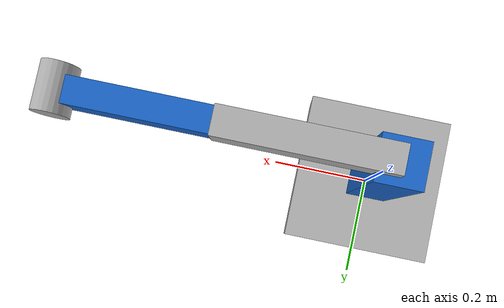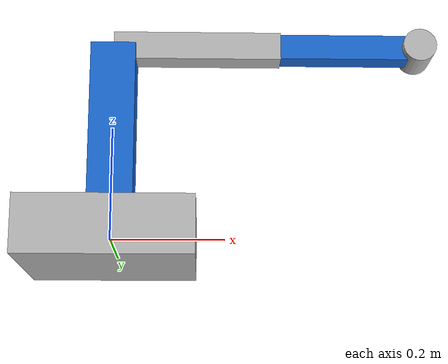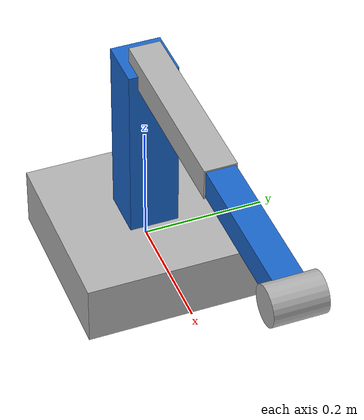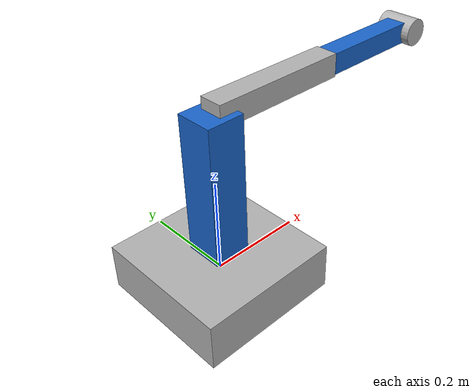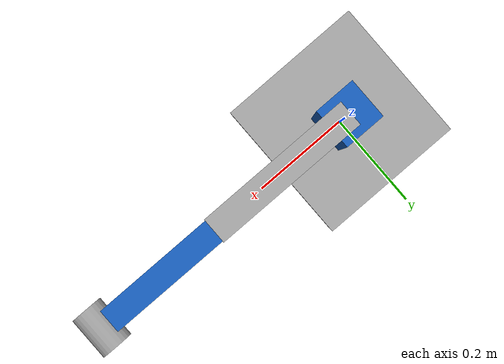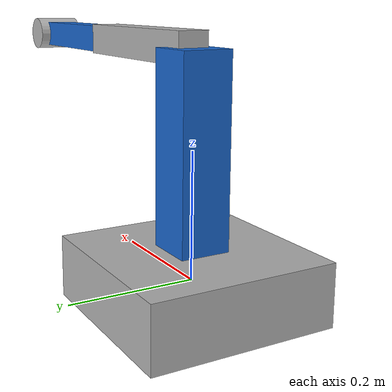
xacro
<?xml version="1.0"?>
<robot xmlns:xacro="http://www.ros.org/wiki/xacro" name="robotic_arm">
  <!-- Note: xacro already provides mathematical constants like pi; avoid redefining to prevent stderr warnings. -->

  <!-- Colors -->
  <material name="gray"><color rgba="0.7 0.7 0.7 1.0"/></material>
  <material name="blue"><color rgba="0.1 0.4 0.8 1.0"/></material>

  <!-- Base -->
  <link name="base_link">
    <inertial>
      <mass value="2.0"/>
      <inertia ixx="0.02" ixy="0" ixz="0" iyy="0.02" iyz="0" izz="0.02"/>
    </inertial>
    <visual>
      <geometry><box size="0.3 0.3 0.1"/></geometry>
      <origin xyz="0 0 0" rpy="0 0 0"/>
      <material name="gray"/>
    </visual>
    <collision>
      <geometry><box size="0.3 0.3 0.1"/></geometry>
      <origin xyz="0 0 0" rpy="0 0 0"/>
    </collision>
  </link>

  <!-- Shoulder tower -->
  <link name="shoulder_link">
    <inertial>
      <mass value="1.0"/>
      <inertia ixx="0.01" ixy="0" ixz="0" iyy="0.01" iyz="0" izz="0.01"/>
    </inertial>
    <visual>
      <geometry><box size="0.08 0.08 0.30"/></geometry>
      <origin xyz="0 0 0.15" rpy="0 0 0"/>
      <material name="blue"/>
    </visual>
    <collision>
      <geometry><box size="0.08 0.08 0.30"/></geometry>
      <origin xyz="0 0 0.15" rpy="0 0 0"/>
    </collision>
  </link>

  <!-- Upper arm -->
  <link name="upper_arm_link">
    <inertial>
      <mass value="0.8"/>
      <inertia ixx="0.008" ixy="0" ixz="0" iyy="0.008" iyz="0" izz="0.008"/>
    </inertial>
    <visual>
      <geometry><box size="0.30 0.05 0.05"/></geometry>
      <origin xyz="0.15 0 0" rpy="0 0 0"/>
      <material name="gray"/>
    </visual>
    <collision>
      <geometry><box size="0.30 0.05 0.05"/></geometry>
      <origin xyz="0.15 0 0" rpy="0 0 0"/>
    </collision>
  </link>

  <!-- Forearm -->
  <link name="forearm_link">
    <inertial>
      <mass value="0.6"/>
      <inertia ixx="0.006" ixy="0" ixz="0" iyy="0.006" iyz="0" izz="0.006"/>
    </inertial>
    <visual>
      <geometry><box size="0.25 0.045 0.045"/></geometry>
      <origin xyz="0.125 0 0" rpy="0 0 0"/>
      <material name="blue"/>
    </visual>
    <collision>
      <geometry><box size="0.25 0.045 0.045"/></geometry>
      <origin xyz="0.125 0 0" rpy="0 0 0"/>
    </collision>
  </link>

  <!-- Wrist -->
  <link name="wrist_link">
    <inertial>
      <mass value="0.3"/>
      <inertia ixx="0.003" ixy="0" ixz="0" iyy="0.003" iyz="0" izz="0.003"/>
    </inertial>
    <visual>
      <geometry><cylinder radius="0.03" length="0.08"/></geometry>
      <origin xyz="0 0 0" rpy="1.5708 0 0"/>
      <material name="gray"/>
    </visual>
    <collision>
      <geometry><cylinder radius="0.03" length="0.08"/></geometry>
      <origin xyz="0 0 0" rpy="1.5708 0 0"/>
    </collision>
  </link>

  <!-- Joints -->

  <!-- Pan at top of base -->
  <joint name="shoulder_pan_joint" type="revolute">
    <parent link="base_link"/>
    <child link="shoulder_link"/>
    <origin xyz="0 0 0.05" rpy="0 0 0"/>
    <axis xyz="0 0 1"/>
    <limit lower="-3.14" upper="3.14" effort="20.0" velocity="1.5"/>
    <dynamics damping="0.2" friction="0.0"/>
  </joint>

  <!-- Shoulder pitch at top of tower -->
  <joint name="shoulder_pitch_joint" type="revolute">
    <parent link="shoulder_link"/>
    <child link="upper_arm_link"/>
    <origin xyz="0 0 0.30" rpy="0 0 0"/>
    <axis xyz="0 1 0"/>
    <limit lower="-1.57" upper="1.57" effort="15.0" velocity="1.5"/>
    <dynamics damping="0.1" friction="0.0"/>
  </joint>

  <!-- Elbow pitch at end of upper arm -->
  <joint name="elbow_joint" type="revolute">
    <parent link="upper_arm_link"/>
    <child link="forearm_link"/>
    <origin xyz="0.30 0 0" rpy="0 0 0"/>
    <axis xyz="0 1 0"/>
    <limit lower="-2.0" upper="2.0" effort="10.0" velocity="1.5"/>
    <dynamics damping="0.1" friction="0.0"/>
  </joint>

  <!-- Wrist roll at end of forearm -->
  <joint name="wrist_roll_joint" type="continuous">
    <parent link="forearm_link"/>
    <child link="wrist_link"/>
    <origin xyz="0.25 0 0" rpy="0 0 0"/>
    <axis xyz="1 0 0"/>
    <dynamics damping="0.05" friction="0.0"/>
  </joint>

  <!-- Gazebo visual tuning (optional) -->
  <gazebo reference="base_link"><mu1>1.0</mu1><mu2>1.0</mu2></gazebo>
  <gazebo reference="shoulder_link"><mu1>1.0</mu1><mu2>1.0</mu2></gazebo>
  <gazebo reference="upper_arm_link"><mu1>1.0</mu1><mu2>1.0</mu2></gazebo>
  <gazebo reference="forearm_link"><mu1>1.0</mu1><mu2>1.0</mu2></gazebo>
  <gazebo reference="wrist_link"><mu1>1.0</mu1><mu2>1.0</mu2></gazebo>
</robot>
